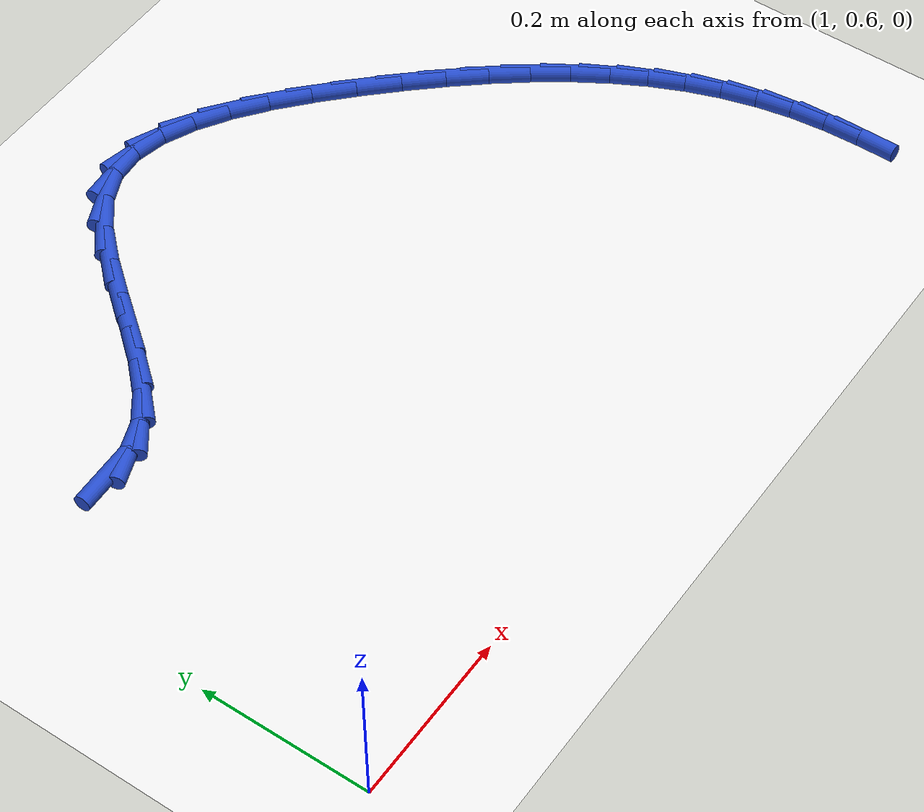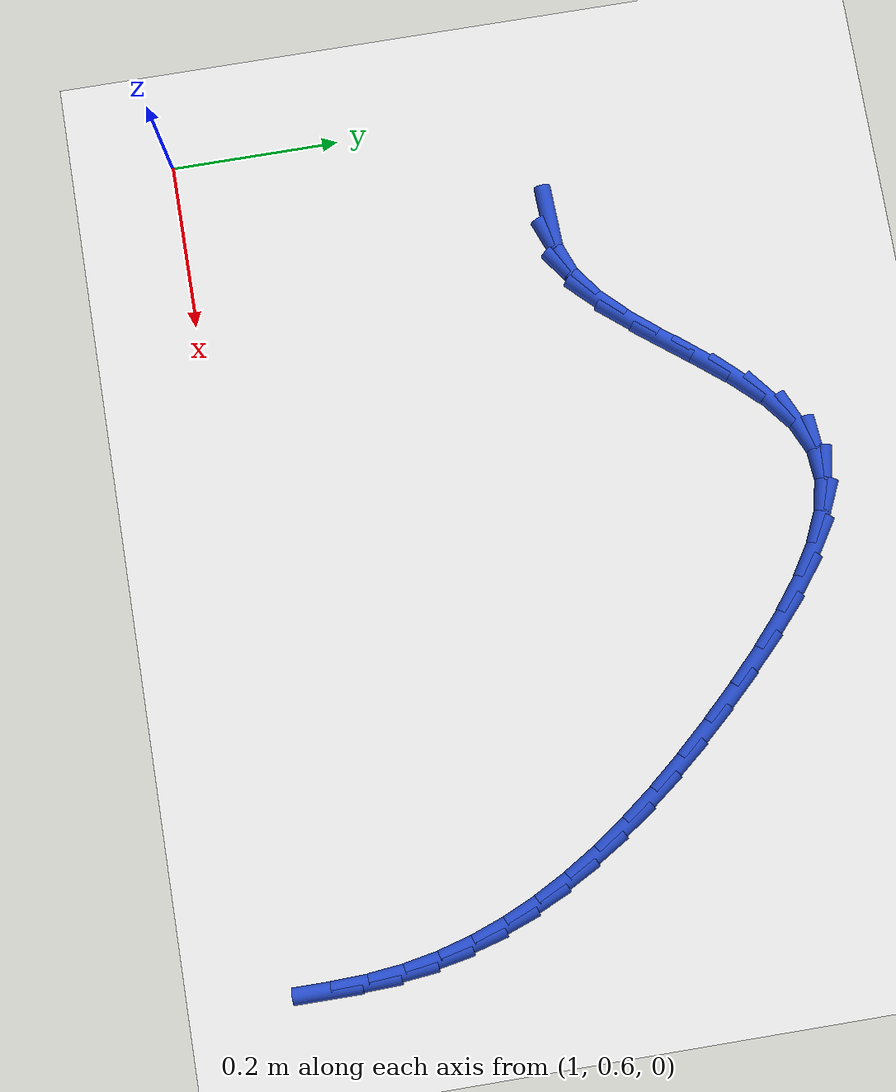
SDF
<sdf version="1.6">
 <world name="default">
  <model name="ground_plane">
   <static>1</static>
   <link name="link">
    <collision name="collision">
     <geometry><plane><normal>0 0 1</normal><size>100 100</size></plane></geometry>
     <surface><friction><ode><mu>100</mu><mu2>50</mu2></ode></friction></surface>
    </collision>
    <visual name="visual">
     <cast_shadows>0</cast_shadows>
     <geometry><plane><normal>0 0 1</normal><size>100 100</size></plane></geometry>
     <material>
      <script><uri>file://media/materials/scripts/gazebo.material</uri><name>Gazebo/WhiteGlow</name></script>
     </material>
    </visual>
   </link>
  </model>
  <model name="line">
   <link name="link_43">
    <pose>1.1394676986606738 1.034243698150977 0.01 0 1.57 0.037521252191220794</pose>
    <collision name="collision">
     <geometry><cylinder><radius>0.01</radius><length>0.08</length></cylinder></geometry>
    </collision>
    <visual name="visual">
     <material>
      <script><name>Gazebo/Blue</name><uri>file://media/materials/scripts/gazebo.material</uri></script>
     </material>
     <geometry><cylinder><radius>0.01</radius><length>0.08</length></cylinder></geometry>
    </visual>
   </link>
   <link name="link_44">
    <pose>1.1766456439271813 1.0356393162104254 0.01 0 1.57 0.36178900563334204</pose>
    <collision name="collision">
     <geometry><cylinder><radius>0.01</radius><length>0.08</length></cylinder></geometry>
    </collision>
    <visual name="visual">
     <material>
      <script><name>Gazebo/Blue</name><uri>file://media/materials/scripts/gazebo.material</uri></script>
     </material>
     <geometry><cylinder><radius>0.01</radius><length>0.08</length></cylinder></geometry>
    </visual>
   </link>
   <link name="link_45">
    <pose>1.211739344616086 1.0489204114436608 0.01 0 1.57 0.6319163065744884</pose>
    <collision name="collision">
     <geometry><cylinder><radius>0.01</radius><length>0.08</length></cylinder></geometry>
    </collision>
    <visual name="visual">
     <material>
      <script><name>Gazebo/Blue</name><uri>file://media/materials/scripts/gazebo.material</uri></script>
     </material>
     <geometry><cylinder><radius>0.01</radius><length>0.08</length></cylinder></geometry>
    </visual>
   </link>
   <link name="link_46">
    <pose>1.2449150388757368 1.0732068068316694 0.01 0 1.57 0.7929548387686479</pose>
    <collision name="collision">
     <geometry><cylinder><radius>0.01</radius><length>0.08</length></cylinder></geometry>
    </collision>
    <visual name="visual">
     <material>
      <script><name>Gazebo/Blue</name><uri>file://media/materials/scripts/gazebo.material</uri></script>
     </material>
     <geometry><cylinder><radius>0.01</radius><length>0.08</length></cylinder></geometry>
    </visual>
   </link>
   <link name="link_47">
    <pose>1.2766977087510347 1.1054734860587563 0.01 0 1.57 0.876858586726603</pose>
    <collision name="collision">
     <geometry><cylinder><radius>0.01</radius><length>0.08</length></cylinder></geometry>
    </collision>
    <visual name="visual">
     <material>
      <script><name>Gazebo/Blue</name><uri>file://media/materials/scripts/gazebo.material</uri></script>
     </material>
     <geometry><cylinder><radius>0.01</radius><length>0.08</length></cylinder></geometry>
    </visual>
   </link>
   <link name="link_48">
    <pose>1.3076212420772027 1.14264218733458 0.01 0 1.57 0.9054402420533546</pose>
    <collision name="collision">
     <geometry><cylinder><radius>0.01</radius><length>0.08</length></cylinder></geometry>
    </collision>
    <visual name="visual">
     <material>
      <script><name>Gazebo/Blue</name><uri>file://media/materials/scripts/gazebo.material</uri></script>
     </material>
     <geometry><cylinder><radius>0.01</radius><length>0.08</length></cylinder></geometry>
    </visual>
   </link>
   <link name="link_49">
    <pose>1.338219526689463 1.181634648868799 0.01 0 1.57 0.8861723919869269</pose>
    <collision name="collision">
     <geometry><cylinder><radius>0.01</radius><length>0.08</length></cylinder></geometry>
    </collision>
    <visual name="visual">
     <material>
      <script><name>Gazebo/Blue</name><uri>file://media/materials/scripts/gazebo.material</uri></script>
     </material>
     <geometry><cylinder><radius>0.01</radius><length>0.08</length></cylinder></geometry>
    </visual>
   </link>
   <link name="link_50">
    <pose>1.3690264504230378 1.2193726088710704 0.01 0 1.57 0.8139602663758612</pose>
    <collision name="collision">
     <geometry><cylinder><radius>0.01</radius><length>0.08</length></cylinder></geometry>
    </collision>
    <visual name="visual">
     <material>
      <script><name>Gazebo/Blue</name><uri>file://media/materials/scripts/gazebo.material</uri></script>
     </material>
     <geometry><cylinder><radius>0.01</radius><length>0.08</length></cylinder></geometry>
    </visual>
   </link>
   <link name="link_51">
    <pose>1.40057590111315 1.2527778055510532 0.01 0 1.57 0.6697705460041684</pose>
    <collision name="collision">
     <geometry><cylinder><radius>0.01</radius><length>0.08</length></cylinder></geometry>
    </collision>
    <visual name="visual">
     <material>
      <script><name>Gazebo/Blue</name><uri>file://media/materials/scripts/gazebo.material</uri></script>
     </material>
     <geometry><cylinder><radius>0.01</radius><length>0.08</length></cylinder></geometry>
    </visual>
   </link>
   <link name="link_52">
    <pose>1.433401766595023 1.2787719771184067 0.01 0 1.57 0.4209304914450919</pose>
    <collision name="collision">
     <geometry><cylinder><radius>0.01</radius><length>0.08</length></cylinder></geometry>
    </collision>
    <visual name="visual">
     <material>
      <script><name>Gazebo/Blue</name><uri>file://media/materials/scripts/gazebo.material</uri></script>
     </material>
     <geometry><cylinder><radius>0.01</radius><length>0.08</length></cylinder></geometry>
    </visual>
   </link>
   <link name="link_53">
    <pose>1.4680376519331941 1.2942780843155677 0.01 0 1.57 0.08339045549027199</pose>
    <collision name="collision">
     <geometry><cylinder><radius>0.01</radius><length>0.08</length></cylinder></geometry>
    </collision>
    <visual name="visual">
     <material>
      <script><name>Gazebo/Blue</name><uri>file://media/materials/scripts/gazebo.material</uri></script>
     </material>
     <geometry><cylinder><radius>0.01</radius><length>0.08</length></cylinder></geometry>
    </visual>
   </link>
   <link name="link_54">
    <pose>1.5047562352820636 1.297347181140041 0.01 0 1.57 -0.20830182374918246</pose>
    <collision name="collision">
     <geometry><cylinder><radius>0.01</radius><length>0.08</length></cylinder></geometry>
    </collision>
    <visual name="visual">
     <material>
      <script><name>Gazebo/Blue</name><uri>file://media/materials/scripts/gazebo.material</uri></script>
     </material>
     <geometry><cylinder><radius>0.01</radius><length>0.08</length></cylinder></geometry>
    </visual>
   </link>
   <link name="link_55">
    <pose>1.5430865530261562 1.2892453876947545 0.01 0 1.57 -0.41723393961143784</pose>
    <collision name="collision">
     <geometry><cylinder><radius>0.01</radius><length>0.08</length></cylinder></geometry>
    </collision>
    <visual name="visual">
     <material>
      <script><name>Gazebo/Blue</name><uri>file://media/materials/scripts/gazebo.material</uri></script>
     </material>
     <geometry><cylinder><radius>0.01</radius><length>0.08</length></cylinder></geometry>
    </visual>
   </link>
   <link name="link_56">
    <pose>1.582426035590428 1.2718078102222146 0.01 0 1.57 -0.5603515685283387</pose>
    <collision name="collision">
     <geometry><cylinder><radius>0.01</radius><length>0.08</length></cylinder></geometry>
    </collision>
    <visual name="visual">
     <material>
      <script><name>Gazebo/Blue</name><uri>file://media/materials/scripts/gazebo.material</uri></script>
     </material>
     <geometry><cylinder><radius>0.01</radius><length>0.08</length></cylinder></geometry>
    </visual>
   </link>
   <link name="link_57">
    <pose>1.6221721133998386 1.2468695549649291 0.01 0 1.57 -0.6585592411189238</pose>
    <collision name="collision">
     <geometry><cylinder><radius>0.01</radius><length>0.08</length></cylinder></geometry>
    </collision>
    <visual name="visual">
     <material>
      <script><name>Gazebo/Blue</name><uri>file://media/materials/scripts/gazebo.material</uri></script>
     </material>
     <geometry><cylinder><radius>0.01</radius><length>0.08</length></cylinder></geometry>
    </visual>
   </link>
   <link name="link_58">
    <pose>1.661722216879345 1.2162657281654035 0.01 0 1.57 -0.7264759816325205</pose>
    <collision name="collision">
     <geometry><cylinder><radius>0.01</radius><length>0.08</length></cylinder></geometry>
    </collision>
    <visual name="visual">
     <material>
      <script><name>Gazebo/Blue</name><uri>file://media/materials/scripts/gazebo.material</uri></script>
     </material>
     <geometry><cylinder><radius>0.01</radius><length>0.08</length></cylinder></geometry>
    </visual>
   </link>
   <link name="link_59">
    <pose>1.7004737764539055 1.1818314360661455 0.01 0 1.57 -0.7729185493805275</pose>
    <collision name="collision">
     <geometry><cylinder><radius>0.01</radius><length>0.08</length></cylinder></geometry>
    </collision>
    <visual name="visual">
     <material>
      <script><name>Gazebo/Blue</name><uri>file://media/materials/scripts/gazebo.material</uri></script>
     </material>
     <geometry><cylinder><radius>0.01</radius><length>0.08</length></cylinder></geometry>
    </visual>
   </link>
   <link name="link_60">
    <pose>1.7378242225484788 1.1454017849096623 0.01 0 1.57 -0.8042346697236329</pose>
    <collision name="collision">
     <geometry><cylinder><radius>0.01</radius><length>0.08</length></cylinder></geometry>
    </collision>
    <visual name="visual">
     <material>
      <script><name>Gazebo/Blue</name><uri>file://media/materials/scripts/gazebo.material</uri></script>
     </material>
     <geometry><cylinder><radius>0.01</radius><length>0.08</length></cylinder></geometry>
    </visual>
   </link>
   <link name="link_61">
    <pose>1.77320855345801 1.1086586640896534 0.01 0 1.57 -0.8348037902321448</pose>
    <collision name="collision">
     <geometry><cylinder><radius>0.01</radius><length>0.08</length></cylinder></geometry>
    </collision>
    <visual name="visual">
     <material>
      <script><name>Gazebo/Blue</name><uri>file://media/materials/scripts/gazebo.material</uri></script>
     </material>
     <geometry><cylinder><radius>0.01</radius><length>0.08</length></cylinder></geometry>
    </visual>
   </link>
   <link name="link_62">
    <pose>1.8063631513342844 1.0720547986942388 0.01 0 1.57 -0.8711824764554376</pose>
    <collision name="collision">
     <geometry><cylinder><radius>0.01</radius><length>0.08</length></cylinder></geometry>
    </collision>
    <visual name="visual">
     <material>
      <script><name>Gazebo/Blue</name><uri>file://media/materials/scripts/gazebo.material</uri></script>
     </material>
     <geometry><cylinder><radius>0.01</radius><length>0.08</length></cylinder></geometry>
    </visual>
   </link>
   <link name="link_63">
    <pose>1.8371693598200889 1.0354517026820103 0.01 0 1.57 -0.913819224097749</pose>
    <collision name="collision">
     <geometry><cylinder><radius>0.01</radius><length>0.08</length></cylinder></geometry>
    </collision>
    <visual name="visual">
     <material>
      <script><name>Gazebo/Blue</name><uri>file://media/materials/scripts/gazebo.material</uri></script>
     </material>
     <geometry><cylinder><radius>0.01</radius><length>0.08</length></cylinder></geometry>
    </visual>
   </link>
   <link name="link_64">
    <pose>1.8655094468915325 0.9987071202093563 0.01 0 1.57 -0.9630416682131838</pose>
    <collision name="collision">
     <geometry><cylinder><radius>0.01</radius><length>0.08</length></cylinder></geometry>
    </collision>
    <visual name="visual">
     <material>
      <script><name>Gazebo/Blue</name><uri>file://media/materials/scripts/gazebo.material</uri></script>
     </material>
     <geometry><cylinder><radius>0.01</radius><length>0.08</length></cylinder></geometry>
    </visual>
   </link>
   <link name="link_65">
    <pose>1.8912656805247259 0.9616787954326654 0.01 0 1.57 -1.019028372528602</pose>
    <collision name="collision">
     <geometry><cylinder><radius>0.01</radius><length>0.08</length></cylinder></geometry>
    </collision>
    <visual name="visual">
     <material>
      <script><name>Gazebo/Blue</name><uri>file://media/materials/scripts/gazebo.material</uri></script>
     </material>
     <geometry><cylinder><radius>0.01</radius><length>0.08</length></cylinder></geometry>
    </visual>
   </link>
   <link name="link_66">
    <pose>1.9143203286957788 0.9242244725083255 0.01 0 1.57 -1.0817276046815947</pose>
    <collision name="collision">
     <geometry><cylinder><radius>0.01</radius><length>0.08</length></cylinder></geometry>
    </collision>
    <visual name="visual">
     <material>
      <script><name>Gazebo/Blue</name><uri>file://media/materials/scripts/gazebo.material</uri></script>
     </material>
     <geometry><cylinder><radius>0.01</radius><length>0.08</length></cylinder></geometry>
    </visual>
   </link>
   <link name="link_67">
    <pose>1.934555659380802 0.8862018955927263 0.01 0 1.57 -1.1507716163277262</pose>
    <collision name="collision">
     <geometry><cylinder><radius>0.01</radius><length>0.08</length></cylinder></geometry>
    </collision>
    <visual name="visual">
     <material>
      <script><name>Gazebo/Blue</name><uri>file://media/materials/scripts/gazebo.material</uri></script>
     </material>
     <geometry><cylinder><radius>0.01</radius><length>0.08</length></cylinder></geometry>
    </visual>
   </link>
   <link name="link_68">
    <pose>1.9518539405559046 0.8474688088422552 0.01 0 1.57 -1.225406406048052</pose>
    <collision name="collision">
     <geometry><cylinder><radius>0.01</radius><length>0.08</length></cylinder></geometry>
    </collision>
    <visual name="visual">
     <material>
      <script><name>Gazebo/Blue</name><uri>file://media/materials/scripts/gazebo.material</uri></script>
     </material>
     <geometry><cylinder><radius>0.01</radius><length>0.08</length></cylinder></geometry>
    </visual>
   </link>
   <link name="link_69">
    <pose>1.9660974401971967 0.8078829564133001 0.01 0 1.57 -1.3044645760982947</pose>
    <collision name="collision">
     <geometry><cylinder><radius>0.01</radius><length>0.08</length></cylinder></geometry>
    </collision>
    <visual name="visual">
     <material>
      <script><name>Gazebo/Blue</name><uri>file://media/materials/scripts/gazebo.material</uri></script>
     </material>
     <geometry><cylinder><radius>0.01</radius><length>0.08</length></cylinder></geometry>
    </visual>
   </link>
   <link name="link_70">
    <pose>1.977168426280788 0.7673020824622507 0.01 0 1.57 -1.386407517514661</pose>
    <collision name="collision">
     <geometry><cylinder><radius>0.01</radius><length>0.08</length></cylinder></geometry>
    </collision>
    <visual name="visual">
     <material>
      <script><name>Gazebo/Blue</name><uri>file://media/materials/scripts/gazebo.material</uri></script>
     </material>
     <geometry><cylinder><radius>0.01</radius><length>0.08</length></cylinder></geometry>
    </visual>
   </link>
   <link name="link_71">
    <pose>1.9849491667827892 0.7255839311454947 0.01 0 1.57 -1.4691746983548502</pose>
    <collision name="collision">
     <geometry><cylinder><radius>0.01</radius><length>0.08</length></cylinder></geometry>
    </collision>
    <visual name="visual">
     <material>
      <script><name>Gazebo/Blue</name><uri>file://media/materials/scripts/gazebo.material</uri></script>
     </material>
     <geometry><cylinder><radius>0.01</radius><length>0.08</length></cylinder></geometry>
    </visual>
   </link>
   <link name="link_72">
    <pose>1.989333277671337 0.6825910264891865 0.01 0 1.57 -1.5377014814712118</pose>
    <collision name="collision">
     <geometry><cylinder><radius>0.01</radius><length>0.08</length></cylinder></geometry>
    </collision>
    <visual name="visual">
     <material>
      <script><name>Gazebo/Blue</name><uri>file://media/materials/scripts/gazebo.material</uri></script>
     </material>
     <geometry><cylinder><radius>0.01</radius><length>0.08</length></cylinder></geometry>
    </visual>
   </link>
   <link name="link_73">
    <pose>1.9907952945976548 0.6384305807799963 0.01 0 1.57 1.5677131679715255</pose>
    <collision name="collision">
     <geometry><cylinder><radius>0.01</radius><length>0.08</length></cylinder></geometry>
    </collision>
    <visual name="visual">
     <material>
      <script><name>Gazebo/Blue</name><uri>file://media/materials/scripts/gazebo.material</uri></script>
     </material>
     <geometry><cylinder><radius>0.01</radius><length>0.08</length></cylinder></geometry>
    </visual>
   </link>
  </model>
 </world>
</sdf>
